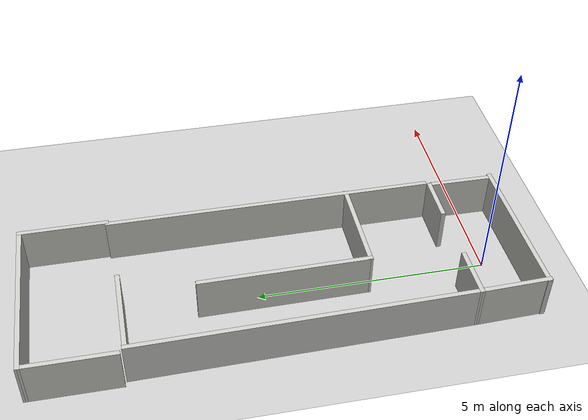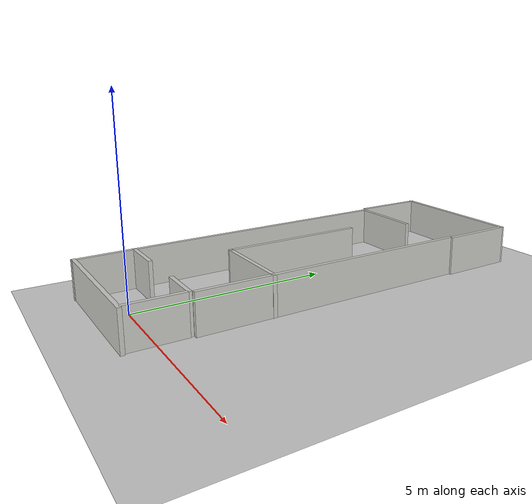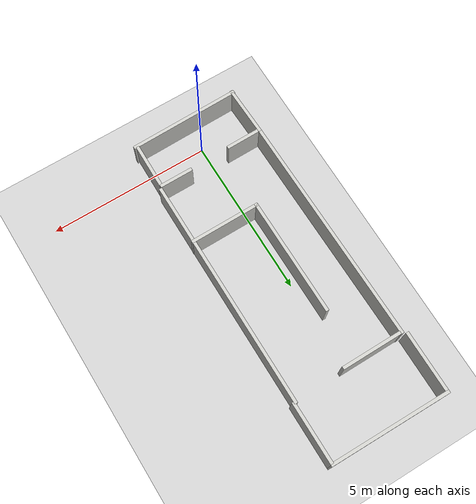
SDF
<sdf version="1.6">
 <world name="default">
  <light name="sun" type="directional">
   <pose>0 0 10 0 -0 0</pose>
   <diffuse>0.8 0.8 0.8 1</diffuse>
   <specular>0.2 0.2 0.2 1</specular>
   <attenuation>
    <range>1000</range>
    <constant>0.9</constant>
    <linear>0.01</linear>
    <quadratic>0.001</quadratic>
   </attenuation>
   <direction>-0.5 0.1 -0.9</direction>
  </light>
  <model name="ground_plane">
   <static>1</static>
   <link name="link">
    <collision name="collision">
     <geometry><plane><normal>0 0 1</normal><size>100 100</size></plane></geometry>
     <surface>
      <contact><collide_bitmask>65535</collide_bitmask></contact>
      <friction><ode><mu>100</mu><mu2>50</mu2></ode></friction>
     </surface>
    </collision>
    <visual name="visual">
     <cast_shadows>0</cast_shadows>
     <geometry><plane><normal>0 0 1</normal><size>100 100</size></plane></geometry>
     <material>
      <script><uri>file://media/materials/scripts/gazebo.material</uri><name>Gazebo/Grey</name></script>
     </material>
    </visual>
   </link>
  </model>
  <gravity>0 0 -9.8</gravity>
  <magnetic_field>6e-06 2.3e-05 -4.2e-05</magnetic_field>
  <atmosphere type="adiabatic"/>
  <physics name="default_physics" default="0" type="ode">
   <max_step_size>0.001</max_step_size>
   <real_time_factor>1</real_time_factor>
   <real_time_update_rate>1000</real_time_update_rate>
  </physics>
  <scene><ambient>0.4 0.4 0.4 1</ambient><background>0.7 0.7 0.7 1</background><shadows>1</shadows></scene>
  <audio><device>default</device></audio>
  <spherical_coordinates>
   <surface_model>EARTH_WGS84</surface_model>
   <latitude_deg>0</latitude_deg>
   <longitude_deg>0</longitude_deg>
   <elevation>0</elevation>
   <heading_deg>0</heading_deg>
  </spherical_coordinates>
  <model name="Final_Maze">
   <pose>0.05687 4.54838 0 0 -0 0</pose>
   <link name="Wall_11">
    <collision name="Wall_11_Collision">
     <geometry><box><size>1.962 0.1 1</size></box></geometry>
     <pose>0 0 0.5 0 -0 0</pose>
    </collision>
    <visual name="Wall_11_Visual">
     <pose>0 0 0.5 0 -0 0</pose>
     <geometry><box><size>1.962 0.1 1</size></box></geometry>
     <material>
      <script><uri>file://media/materials/scripts/gazebo.material</uri><name>Gazebo/CeilingTiled</name></script>
      <ambient>1 0.764706 0.305882 1</ambient>
     </material>
     <meta><layer>0</layer></meta>
    </visual>
    <pose>-1.8345 4.3806 0 0 -0 -1.5708</pose>
   </link>
   <link name="Wall_15">
    <collision name="Wall_15_Collision">
     <geometry><box><size>1.89003 0.1 1</size></box></geometry>
     <pose>0 0 0.5 0 -0 0</pose>
    </collision>
    <visual name="Wall_15_Visual">
     <pose>0 0 0.5 0 -0 0</pose>
     <geometry><box><size>1.89003 0.1 1</size></box></geometry>
     <material>
      <script><uri>file://media/materials/scripts/gazebo.material</uri><name>Gazebo/CeilingTiled</name></script>
      <ambient>1 0.764706 0.305882 1</ambient>
     </material>
     <meta><layer>0</layer></meta>
    </visual>
    <pose>-0.7415 3.3156 0 0 -0 0.005587</pose>
   </link>
   <link name="Wall_17">
    <collision name="Wall_17_Collision">
     <geometry><box><size>1.95 0.1 1</size></box></geometry>
     <pose>0 0 0.5 0 -0 0</pose>
    </collision>
    <visual name="Wall_17_Visual">
     <pose>0 0 0.5 0 -0 0</pose>
     <geometry><box><size>1.95 0.1 1</size></box></geometry>
     <material>
      <script><uri>file://media/materials/scripts/gazebo.material</uri><name>Gazebo/CeilingTiled</name></script>
      <ambient>1 0.764706 0.305882 1</ambient>
     </material>
     <meta><layer>0</layer></meta>
    </visual>
    <pose>1.8345 4.3636 0 0 -0 -1.5708</pose>
   </link>
   <link name="Wall_25">
    <collision name="Wall_25_Collision">
     <geometry><box><size>3.44141 0.1 1</size></box></geometry>
     <pose>0 0 0.5 0 -0 0</pose>
    </collision>
    <visual name="Wall_25_Visual">
     <pose>0 0 0.5 0 -0 0</pose>
     <geometry><box><size>3.44141 0.1 1</size></box></geometry>
     <material>
      <script><uri>file://media/materials/scripts/gazebo.material</uri><name>Gazebo/CeilingTiled</name></script>
      <ambient>1 0.764706 0.305882 1</ambient>
     </material>
     <meta><layer>0</layer></meta>
    </visual>
    <pose>0.078 -5.2664 0 0 -0 0.015563</pose>
   </link>
   <link name="Wall_30">
    <collision name="Wall_30_Collision">
     <geometry><box><size>1.39512 0.1 1</size></box></geometry>
     <pose>0 0 0.5 0 -0 0</pose>
    </collision>
    <visual name="Wall_30_Visual">
     <pose>0 0 0.5 0 -0 0</pose>
     <geometry><box><size>1.39512 0.1 1</size></box></geometry>
     <material>
      <script><uri>file://media/materials/scripts/gazebo.material</uri><name>Gazebo/CeilingTiled</name></script>
      <ambient>1 0.764706 0.305882 1</ambient>
     </material>
     <meta><layer>0</layer></meta>
    </visual>
    <pose>1.7045 -4.5229 0 0 -0 1.5569</pose>
   </link>
   <link name="Wall_32">
    <collision name="Wall_32_Collision">
     <geometry><box><size>1.044 0.1 1</size></box></geometry>
     <pose>0 0 0.5 0 -0 0</pose>
    </collision>
    <visual name="Wall_32_Visual">
     <pose>0 0 0.5 0 -0 0</pose>
     <geometry><box><size>1.044 0.1 1</size></box></geometry>
     <material>
      <script><uri>file://media/materials/scripts/gazebo.material</uri><name>Gazebo/CeilingTiled</name></script>
      <ambient>1 0.764706 0.305882 1</ambient>
     </material>
     <meta><layer>0</layer></meta>
    </visual>
    <pose>1.2235 -3.7984 0 0 -0 3.14159</pose>
   </link>
   <link name="Wall_34">
    <collision name="Wall_34_Collision">
     <geometry><box><size>1.14106 0.1 1</size></box></geometry>
     <pose>0 0 0.5 0 -0 0</pose>
    </collision>
    <visual name="Wall_34_Visual">
     <pose>0 0 0.5 0 -0 0</pose>
     <geometry><box><size>1.14106 0.1 1</size></box></geometry>
     <material>
      <script><uri>file://media/materials/scripts/gazebo.material</uri><name>Gazebo/CeilingTiled</name></script>
      <ambient>1 0.764706 0.305882 1</ambient>
     </material>
     <meta><layer>0</layer></meta>
    </visual>
    <pose>-1.1 -3.8379 0 0 -0 0.010566</pose>
   </link>
   <link name="Wall_37">
    <collision name="Wall_37_Collision">
     <geometry><box><size>1.56769 0.1 1</size></box></geometry>
     <pose>0 0 0.5 0 -0 0</pose>
    </collision>
    <visual name="Wall_37_Visual">
     <pose>0 0 0.5 0 -0 0</pose>
     <geometry><box><size>1.56769 0.1 1</size></box></geometry>
     <material>
      <script><uri>file://media/materials/scripts/gazebo.material</uri><name>Gazebo/CeilingTiled</name></script>
      <ambient>1 0.764706 0.305882 1</ambient>
     </material>
     <meta><layer>0</layer></meta>
    </visual>
    <pose>-1.598 -4.5769 0 0 -0 -1.54013</pose>
   </link>
   <link name="Wall_42">
    <collision name="Wall_42_Collision">
     <geometry><box><size>7.26468 0.1 1</size></box></geometry>
     <pose>0 0 0.5 0 -0 0</pose>
    </collision>
    <visual name="Wall_42_Visual">
     <pose>0 0 0.5 0 -0 0</pose>
     <geometry><box><size>7.26468 0.1 1</size></box></geometry>
     <material>
      <script><uri>file://media/materials/scripts/gazebo.material</uri><name>Gazebo/CeilingTiled</name></script>
      <ambient>1 0.764706 0.305882 1</ambient>
     </material>
     <meta><layer>0</layer></meta>
    </visual>
    <pose>-1.67 -0.261402 0 0 -0 1.58462</pose>
   </link>
   <link name="Wall_44">
    <collision name="Wall_44_Collision">
     <geometry><box><size>7.2 0.1 1</size></box></geometry>
     <pose>0 0 0.5 0 -0 0</pose>
    </collision>
    <visual name="Wall_44_Visual">
     <pose>0 0 0.5 0 -0 0</pose>
     <geometry><box><size>7.2 0.1 1</size></box></geometry>
     <material>
      <script><uri>file://media/materials/scripts/gazebo.material</uri><name>Gazebo/CeilingTiled</name></script>
      <ambient>1 0.764706 0.305882 1</ambient>
     </material>
     <meta><layer>0</layer></meta>
    </visual>
    <pose>1.7805 -0.137402 0 0 -0 1.5708</pose>
   </link>
   <link name="Wall_46">
    <collision name="Wall_46_Collision">
     <geometry><box><size>2.19102 0.1 1</size></box></geometry>
     <pose>0 0 0.5 0 -0 0</pose>
    </collision>
    <visual name="Wall_46_Visual">
     <pose>0 0 0.5 0 -0 0</pose>
     <geometry><box><size>2.19102 0.1 1</size></box></geometry>
     <material>
      <script><uri>file://media/materials/scripts/gazebo.material</uri><name>Gazebo/CeilingTiled</name></script>
      <ambient>1 0.764706 0.305882 1</ambient>
     </material>
     <meta><layer>0</layer></meta>
    </visual>
    <pose>0.743 -1.8819 0 0 -0 0.004304</pose>
   </link>
   <link name="Wall_48">
    <collision name="Wall_48_Collision">
     <geometry><box><size>3.70906 0.1 1</size></box></geometry>
     <pose>0 0 0.5 0 -0 0</pose>
    </collision>
    <visual name="Wall_48_Visual">
     <pose>0 0 0.5 0 -0 0</pose>
     <geometry><box><size>3.70906 0.1 1</size></box></geometry>
     <material>
      <script><uri>file://media/materials/scripts/gazebo.material</uri><name>Gazebo/CeilingTiled</name></script>
      <ambient>1 0.764706 0.305882 1</ambient>
     </material>
     <meta><layer>0</layer></meta>
    </visual>
    <pose>-0.3125 -0.081902 0 0 -0 1.57634</pose>
   </link>
   <link name="Wall_9">
    <collision name="Wall_9_Collision">
     <geometry><box><size>3.76907 0.1 1</size></box></geometry>
     <pose>0 0 0.5 0 -0 0</pose>
    </collision>
    <visual name="Wall_9_Visual">
     <pose>0 0 0.5 0 -0 0</pose>
     <geometry><box><size>3.76907 0.1 1</size></box></geometry>
     <material>
      <script><uri>file://media/materials/scripts/gazebo.material</uri><name>Gazebo/CeilingTiled</name></script>
      <ambient>1 0.764706 0.305882 1</ambient>
     </material>
     <meta><layer>0</layer></meta>
    </visual>
    <pose>0 5.3001 0 0 -0 -0.006269</pose>
   </link>
   <static>1</static>
  </model>
 </world>
</sdf>
